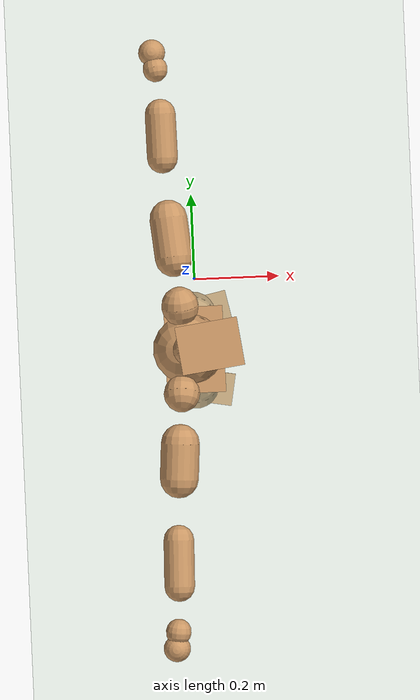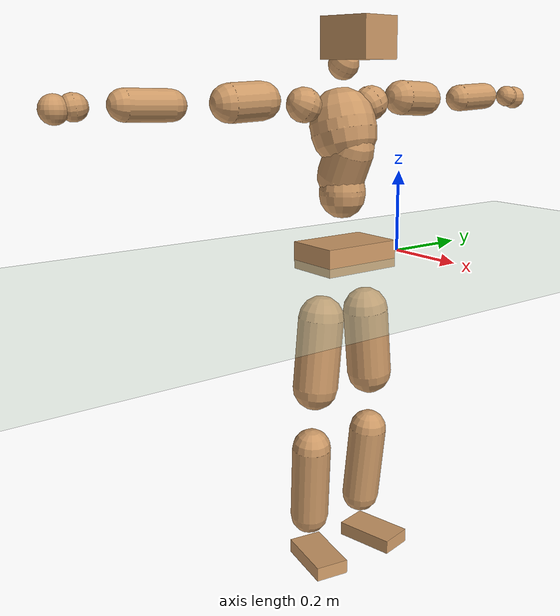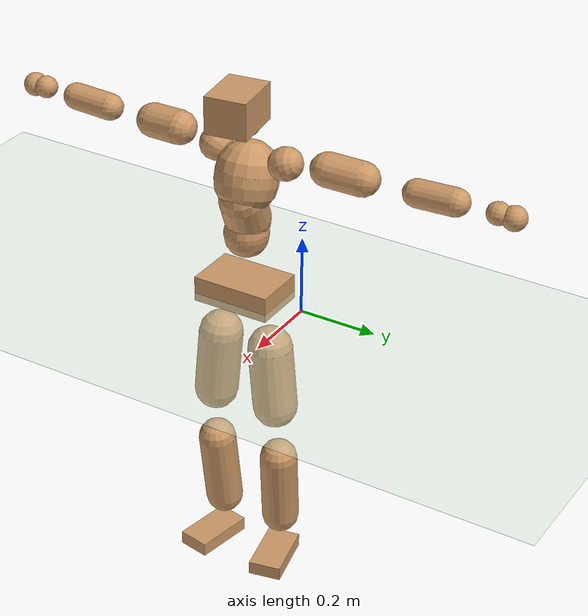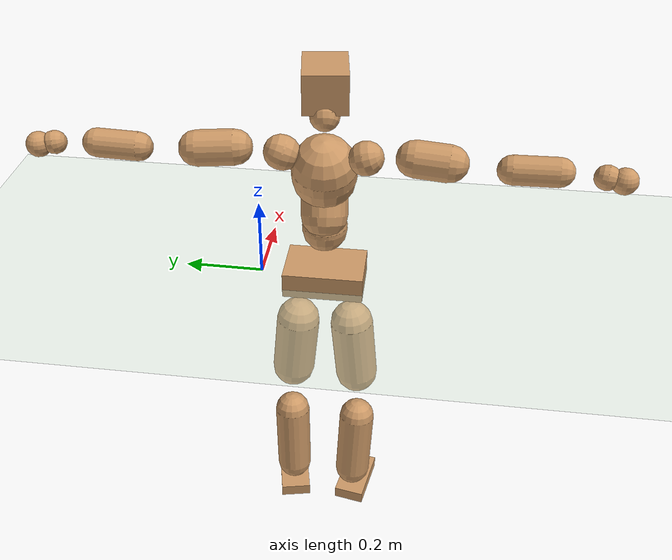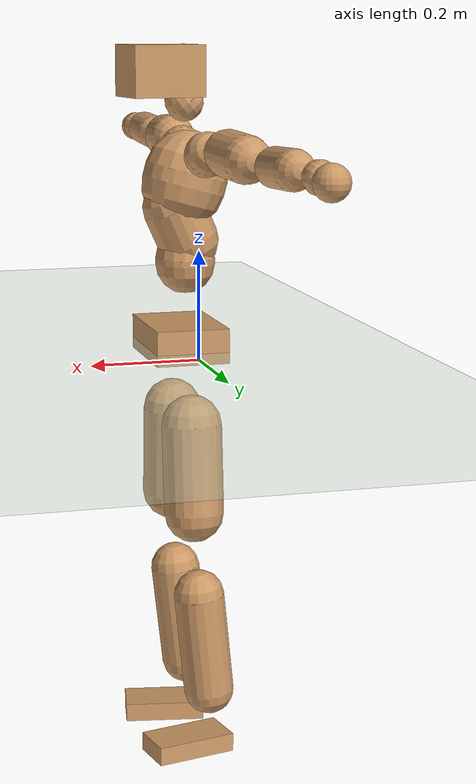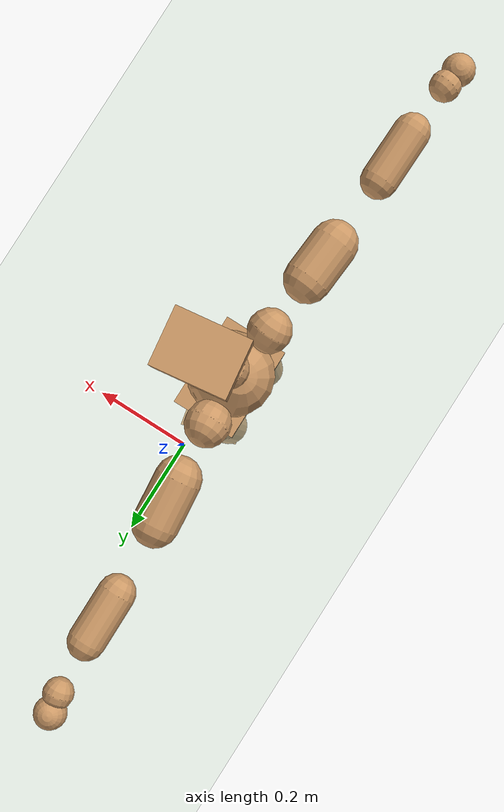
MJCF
<mujoco model="humanoid">
  <compiler coordinate="local" angle="radian"/>
  <default>
    <joint damping="0.0" armature="0.01" stiffness="0.0" limited="true"/>
    <geom conaffinity="1" condim="3" contype="7" margin="0.001" rgba="0.8 0.6 .4 1"/>
  </default>
  <asset>
    <texture type="skybox" builtin="gradient" rgb1=".4 .5 .6" rgb2="0 0 0" width="100" height="100"/>
    <texture builtin="flat" height="1278" mark="cross" markrgb="1 1 1" name="texgeom" random="0.01" rgb1="0.8 0.6 0.4" rgb2="0.8 0.6 0.4" type="cube" width="127"/>
    <texture builtin="checker" height="100" name="texplane" rgb1="0 0 0" rgb2="0.8 0.8 0.8" type="2d" width="100"/>
    <material name="MatPlane" reflectance="0.5" shininess="1" specular="1" texrepeat="60 60" texture="texplane"/>
    <material name="geom" texture="texgeom" texuniform="true"/>
  </asset>
  <worldbody>
    <light cutoff="100" diffuse="1 1 1" dir="-0 0 -1.3" directional="true" exponent="1" pos="0 0 1.3" specular=".1 .1 .1"/>
    <geom conaffinity="1" condim="3" name="floor" pos="0 0 0" rgba="0.8 0.9 0.8 1" size="100 100 .2" type="plane" material="MatPlane"/>
    <body name="Pelvis" pos="-0.0012 -0.1664 0.0209">
      <freejoint name="Pelvis"/>
      <geom type="box" contype="1" conaffinity="1" density="5359.374606" pos="-0.0050 -0.0000 -0.0110" size="0.0692 0.1016 0.0329" quat="1.0000 0.0000 0.0000 0.0025" name="Pelvis"/>
      <body name="L_Hip" pos="-0.0089 0.064 -0.0774">
        <joint name="L_Hip_x" type="hinge" pos="0 0 0" axis="1 0 0" stiffness="1600" damping="160" armature="0.02" range="-180.0000 180.0000"/>
        <joint name="L_Hip_y" type="hinge" pos="0 0 0" axis="0 1 0" stiffness="1600" damping="160" armature="0.02" range="-180.0000 180.0000"/>
        <joint name="L_Hip_z" type="hinge" pos="0 0 0" axis="0 0 1" stiffness="1600" damping="160" armature="0.02" range="-180.0000 180.0000"/>
        <geom type="capsule" contype="1" conaffinity="1" density="2040.816327" size="0.0569" fromto="-0.0002 0.0079 -0.0865 -0.0006 0.0233 -0.2554" name="L_Hip"/>
        <body name="L_Knee" pos="-0.0008 0.0312 -0.3419">
          <joint name="L_Knee_x" type="hinge" pos="0 0 0" axis="1 0 0" stiffness="1600" damping="160" armature="0.02" range="-180.0000 180.0000"/>
          <joint name="L_Knee_y" type="hinge" pos="0 0 0" axis="0 1 0" stiffness="1600" damping="160" armature="0.02" range="-180.0000 180.0000"/>
          <joint name="L_Knee_z" type="hinge" pos="0 0 0" axis="0 0 1" stiffness="1600" damping="160" armature="0.02" range="-180.0000 180.0000"/>
          <geom type="capsule" contype="1" conaffinity="1" density="1234.567901" size="0.0485" fromto="-0.0084 -0.0023 -0.0780 -0.0296 -0.0080 -0.2762" name="L_Knee"/>
          <body name="L_Ankle" pos="-0.038 -0.0103 -0.3543">
            <joint name="L_Ankle_x" type="hinge" pos="0 0 0" axis="1 0 0" stiffness="1600" damping="160" armature="0.02" range="-180.0000 180.0000"/>
            <joint name="L_Ankle_y" type="hinge" pos="0 0 0" axis="0 1 0" stiffness="1600" damping="160" armature="0.02" range="-180.0000 180.0000"/>
            <joint name="L_Ankle_z" type="hinge" pos="0 0 0" axis="0 0 1" stiffness="1600" damping="160" armature="0.02" range="-180.0000 180.0000"/>
            <geom type="box" contype="1" conaffinity="1" density="999.999987" pos="0.0535 0.0113 -0.0251" size="0.0782 0.0423 0.018" quat="0.9946 0.0000 0.0000 0.1036" name="L_Ankle"/>
            <body name="L_Toe" pos="0.107 0.0225 -0.0502">
              <joint name="L_Toe_x" type="hinge" pos="0 0 0" axis="1 0 0" stiffness="1000" damping="100" armature="0.02" range="-180.0000 180.0000"/>
              <joint name="L_Toe_y" type="hinge" pos="0 0 0" axis="0 1 0" stiffness="1000" damping="100" armature="0.02" range="-180.0000 180.0000"/>
              <joint name="L_Toe_z" type="hinge" pos="0 0 0" axis="0 0 1" stiffness="1000" damping="100" armature="0.02" range="-180.0000 180.0000"/>
              <geom type="box" contype="1" conaffinity="1" density="8723992.927918" pos="0.0000 0.0000 0.0257" size="0.0008 0.0021 0.0009" quat="0.9939 0.0000 0.0000 0.1104" name="L_Toe"/>
            </body>
          </body>
        </body>
      </body>
      <body name="R_Hip" pos="-0.0062 -0.0632 -0.076">
        <joint name="R_Hip_x" type="hinge" pos="0 0 0" axis="1 0 0" stiffness="1600" damping="160" armature="0.02" range="-180.0000 180.0000"/>
        <joint name="R_Hip_y" type="hinge" pos="0 0 0" axis="0 1 0" stiffness="1600" damping="160" armature="0.02" range="-180.0000 180.0000"/>
        <joint name="R_Hip_z" type="hinge" pos="0 0 0" axis="0 0 1" stiffness="1600" damping="160" armature="0.02" range="-180.0000 180.0000"/>
        <geom type="capsule" contype="1" conaffinity="1" density="2040.816327" size="0.0563" fromto="-0.0008 -0.0085 -0.0859 -0.0023 -0.0259 -0.2612" name="R_Hip"/>
        <body name="R_Knee" pos="-0.0031 -0.0344 -0.3471">
          <joint name="R_Knee_x" type="hinge" pos="0 0 0" axis="1 0 0" stiffness="1600" damping="160" armature="0.02" range="-180.0000 180.0000"/>
          <joint name="R_Knee_y" type="hinge" pos="0 0 0" axis="0 1 0" stiffness="1600" damping="160" armature="0.02" range="-180.0000 180.0000"/>
          <joint name="R_Knee_z" type="hinge" pos="0 0 0" axis="0 0 1" stiffness="1600" damping="160" armature="0.02" range="-180.0000 180.0000"/>
          <geom type="capsule" contype="1" conaffinity="1" density="1234.567901" size="0.0489" fromto="-0.0082 0.0027 -0.0784 -0.0290 0.0096 -0.2765" name="R_Knee"/>
          <body name="R_Ankle" pos="-0.0372 0.0123 -0.355">
            <joint name="R_Ankle_x" type="hinge" pos="0 0 0" axis="1 0 0" stiffness="1600" damping="160" armature="0.02" range="-180.0000 180.0000"/>
            <joint name="R_Ankle_y" type="hinge" pos="0 0 0" axis="0 1 0" stiffness="1600" damping="160" armature="0.02" range="-180.0000 180.0000"/>
            <joint name="R_Ankle_z" type="hinge" pos="0 0 0" axis="0 0 1" stiffness="1600" damping="160" armature="0.02" range="-180.0000 180.0000"/>
            <geom type="box" contype="1" conaffinity="1" density="999.999955" pos="0.0548 -0.0098 -0.0210" size="0.0784 0.0421 0.0181" quat="0.9961 0.0000 0.0000 -0.0883" name="R_Ankle"/>
            <body name="R_Toe" pos="0.1097 -0.0196 -0.0421">
              <joint name="R_Toe_x" type="hinge" pos="0 0 0" axis="1 0 0" stiffness="1000" damping="100" armature="0.02" range="-180.0000 180.0000"/>
              <joint name="R_Toe_y" type="hinge" pos="0 0 0" axis="0 1 0" stiffness="1000" damping="100" armature="0.02" range="-180.0000 180.0000"/>
              <joint name="R_Toe_z" type="hinge" pos="0 0 0" axis="0 0 1" stiffness="1000" damping="100" armature="0.02" range="-180.0000 180.0000"/>
              <geom type="box" contype="1" conaffinity="1" density="8680344.965069" pos="0.0000 0.0000 0.0219" size="0.0008 0.0021 0.0009" quat="0.9970 0.0000 0.0000 -0.0780" name="R_Toe"/>
            </body>
          </body>
        </body>
      </body>
      <body name="Torso" pos="-0.0152 -0.001 0.0875">
        <joint name="Torso_x" type="hinge" pos="0 0 0" axis="1 0 0" stiffness="2000" damping="200" armature="0.02" range="-180.0000 180.0000"/>
        <joint name="Torso_y" type="hinge" pos="0 0 0" axis="0 1 0" stiffness="2000" damping="200" armature="0.02" range="-180.0000 180.0000"/>
        <joint name="Torso_z" type="hinge" pos="0 0 0" axis="0 0 1" stiffness="2000" damping="200" armature="0.02" range="-180.0000 180.0000"/>
        <geom type="capsule" contype="1" conaffinity="1" density="2040.816327" size="0.0561" fromto="-0.0002 0.0010 0.0561 -0.0001 0.0008 0.0447" name="Torso"/>
        <body name="Spine" pos="-0.0003 0.0018 0.1008">
          <joint name="Spine_x" type="hinge" pos="0 0 0" axis="1 0 0" stiffness="2000" damping="200" armature="0.02" range="-180.0000 180.0000"/>
          <joint name="Spine_y" type="hinge" pos="0 0 0" axis="0 1 0" stiffness="2000" damping="200" armature="0.02" range="-180.0000 180.0000"/>
          <joint name="Spine_z" type="hinge" pos="0 0 0" axis="0 0 1" stiffness="2000" damping="200" armature="0.02" range="-180.0000 180.0000"/>
          <geom type="capsule" contype="1" conaffinity="1" density="2040.816327" size="0.0579" fromto="0.0240 0.0026 0.0527 -0.0058 -0.0006 -0.0127" name="Spine"/>
          <body name="Chest" pos="0.0182 0.002 0.04">
            <joint name="Chest_x" type="hinge" pos="0 0 0" axis="1 0 0" stiffness="2000" damping="200" armature="0.02" range="-180.0000 180.0000"/>
            <joint name="Chest_y" type="hinge" pos="0 0 0" axis="0 1 0" stiffness="2000" damping="200" armature="0.02" range="-180.0000 180.0000"/>
            <joint name="Chest_z" type="hinge" pos="0 0 0" axis="0 0 1" stiffness="2000" damping="200" armature="0.02" range="-180.0000 180.0000"/>
            <geom type="capsule" contype="1" conaffinity="1" density="2040.816327" size="0.0787" fromto="-0.0213 -0.0014 0.0758 -0.0142 -0.0010 0.0504" name="Chest"/>
            <body name="Neck" pos="-0.0389 -0.0041 0.1776">
              <joint name="Neck_x" type="hinge" pos="0 0 0" axis="1 0 0" stiffness="1000" damping="100" armature="0.02" range="-180.0000 180.0000"/>
              <joint name="Neck_y" type="hinge" pos="0 0 0" axis="0 1 0" stiffness="1000" damping="100" armature="0.02" range="-180.0000 180.0000"/>
              <joint name="Neck_z" type="hinge" pos="0 0 0" axis="0 0 1" stiffness="1000" damping="100" armature="0.02" range="-180.0000 180.0000"/>
              <geom type="capsule" contype="1" conaffinity="1" density="1000" size="0.0358" fromto="0.0218 0.0021 0.0269 0.0231 0.0022 0.0284" name="Neck"/>
              <body name="Head" pos="0.0449 0.0044 0.0553">
                <joint name="Head_x" type="hinge" pos="0 0 0" axis="1 0 0" stiffness="1000" damping="100" armature="0.02" range="-180.0000 180.0000"/>
                <joint name="Head_y" type="hinge" pos="0 0 0" axis="0 1 0" stiffness="1000" damping="100" armature="0.02" range="-180.0000 180.0000"/>
                <joint name="Head_z" type="hinge" pos="0 0 0" axis="0 0 1" stiffness="1000" damping="100" armature="0.02" range="-180.0000 180.0000"/>
                <geom type="box" contype="1" conaffinity="1" density="2249.999863" pos="0.0234 0.0032 0.0287" size="0.0687 0.0531 0.0471" quat="0.9977 0.0000 0.0000 0.0675" name="Head"/>
              </body>
            </body>
            <body name="L_Thorax" pos="-0.0323 0.0597 0.1006">
              <joint name="L_Thorax_x" type="hinge" pos="0 0 0" axis="1 0 0" stiffness="1000" damping="100" armature="0.02" range="-180.0000 180.0000"/>
              <joint name="L_Thorax_y" type="hinge" pos="0 0 0" axis="0 1 0" stiffness="1000" damping="100" armature="0.02" range="-180.0000 180.0000"/>
              <joint name="L_Thorax_z" type="hinge" pos="0 0 0" axis="0 0 1" stiffness="1000" damping="100" armature="0.02" range="-180.0000 180.0000"/>
              <geom type="capsule" contype="1" conaffinity="1" density="1000" size="0.0415" fromto="-0.0019 0.0385 0.0152 -0.0016 0.0339 0.0134" name="L_Thorax"/>
              <body name="L_Shoulder" pos="-0.0035 0.0725 0.0286">
                <joint name="L_Shoulder_x" type="hinge" pos="0 0 0" axis="1 0 0" stiffness="1000" damping="100" armature="0.02" range="-720.0000 720.0000"/>
                <joint name="L_Shoulder_y" type="hinge" pos="0 0 0" axis="0 1 0" stiffness="1000" damping="100" armature="0.02" range="-720.0000 720.0000"/>
                <joint name="L_Shoulder_z" type="hinge" pos="0 0 0" axis="0 0 1" stiffness="1000" damping="100" armature="0.02" range="-720.0000 720.0000"/>
                <geom type="capsule" contype="1" conaffinity="1" density="1000" size="0.0425" fromto="-0.0070 0.0721 -0.0035 -0.0156 0.1604 -0.0079" name="L_Shoulder"/>
                <body name="L_Elbow" pos="-0.0225 0.2325 -0.0114">
                  <joint name="L_Elbow_x" type="hinge" pos="0 0 0" axis="1 0 0" stiffness="1000" damping="100" armature="0.02" range="-720.0000 720.0000"/>
                  <joint name="L_Elbow_y" type="hinge" pos="0 0 0" axis="0 1 0" stiffness="1000" damping="100" armature="0.02" range="-720.0000 720.0000"/>
                  <joint name="L_Elbow_z" type="hinge" pos="0 0 0" axis="0 0 1" stiffness="1000" damping="100" armature="0.02" range="-720.0000 720.0000"/>
                  <geom type="capsule" contype="1" conaffinity="1" density="1000" size="0.0343" fromto="-0.0005 0.0642 0.0024 -0.0013 0.1624 0.0061" name="L_Elbow"/>
                  <body name="L_Wrist" pos="-0.0019 0.2266 0.0085">
                    <joint name="L_Wrist_x" type="hinge" pos="0 0 0" axis="1 0 0" stiffness="600" damping="60" armature="0.02" range="-180.0000 180.0000"/>
                    <joint name="L_Wrist_y" type="hinge" pos="0 0 0" axis="0 1 0" stiffness="600" damping="60" armature="0.02" range="-180.0000 180.0000"/>
                    <joint name="L_Wrist_z" type="hinge" pos="0 0 0" axis="0 0 1" stiffness="600" damping="60" armature="0.02" range="-180.0000 180.0000"/>
                    <geom type="capsule" contype="1" conaffinity="1" density="1000" size="0.0277" fromto="-0.0062 0.0363 -0.0045 -0.0065 0.0383 -0.0048" name="L_Wrist"/>
                    <body name="L_Hand" pos="-0.0127 0.0746 -0.0093">
                      <joint name="L_Hand_x" type="hinge" pos="0 0 0" axis="1 0 0" stiffness="600" damping="60" armature="0.02" range="-180.0000 180.0000"/>
                      <joint name="L_Hand_y" type="hinge" pos="0 0 0" axis="0 1 0" stiffness="600" damping="60" armature="0.02" range="-180.0000 180.0000"/>
                      <joint name="L_Hand_z" type="hinge" pos="0 0 0" axis="0 0 1" stiffness="600" damping="60" armature="0.02" range="-180.0000 180.0000"/>
                      <geom type="sphere" contype="1" conaffinity="1" density="1000" size="0.0300" pos="0.0000 0.0000 0.0000" name="L_Hand"/>
                    </body>
                  </body>
                </body>
              </body>
            </body>
            <body name="R_Thorax" pos="-0.0352 -0.0628 0.1005">
              <joint name="R_Thorax_x" type="hinge" pos="0 0 0" axis="1 0 0" stiffness="1000" damping="100" armature="0.02" range="-180.0000 180.0000"/>
              <joint name="R_Thorax_y" type="hinge" pos="0 0 0" axis="0 1 0" stiffness="1000" damping="100" armature="0.02" range="-180.0000 180.0000"/>
              <joint name="R_Thorax_z" type="hinge" pos="0 0 0" axis="0 0 1" stiffness="1000" damping="100" armature="0.02" range="-180.0000 180.0000"/>
              <geom type="capsule" contype="1" conaffinity="1" density="1000" size="0.0407" fromto="-0.0028 -0.0366 0.0142 -0.0029 -0.0385 0.0149" name="R_Thorax"/>
              <body name="R_Shoulder" pos="-0.0057 -0.075 0.0291">
                <joint name="R_Shoulder_x" type="hinge" pos="0 0 0" axis="1 0 0" stiffness="1000" damping="100" armature="0.02" range="-720.0000 720.0000"/>
                <joint name="R_Shoulder_y" type="hinge" pos="0 0 0" axis="0 1 0" stiffness="1000" damping="100" armature="0.02" range="-720.0000 720.0000"/>
                <joint name="R_Shoulder_z" type="hinge" pos="0 0 0" axis="0 0 1" stiffness="1000" damping="100" armature="0.02" range="-720.0000 720.0000"/>
                <geom type="capsule" contype="1" conaffinity="1" density="1000" size="0.0434" fromto="-0.0053 -0.0731 -0.0033 -0.0111 -0.1527 -0.0069" name="R_Shoulder"/>
                <body name="R_Elbow" pos="-0.0165 -0.2258 -0.0101">
                  <joint name="R_Elbow_x" type="hinge" pos="0 0 0" axis="1 0 0" stiffness="1000" damping="100" armature="0.02" range="-720.0000 720.0000"/>
                  <joint name="R_Elbow_y" type="hinge" pos="0 0 0" axis="0 1 0" stiffness="1000" damping="100" armature="0.02" range="-720.0000 720.0000"/>
                  <joint name="R_Elbow_z" type="hinge" pos="0 0 0" axis="0 0 1" stiffness="1000" damping="100" armature="0.02" range="-720.0000 720.0000"/>
                  <geom type="capsule" contype="1" conaffinity="1" density="1000" size="0.0341" fromto="-0.0016 -0.0640 0.0017 -0.0041 -0.1677 0.0045" name="R_Elbow"/>
                  <body name="R_Wrist" pos="-0.0057 -0.2317 0.0063">
                    <joint name="R_Wrist_x" type="hinge" pos="0 0 0" axis="1 0 0" stiffness="600" damping="60" armature="0.02" range="-180.0000 180.0000"/>
                    <joint name="R_Wrist_y" type="hinge" pos="0 0 0" axis="0 1 0" stiffness="600" damping="60" armature="0.02" range="-180.0000 180.0000"/>
                    <joint name="R_Wrist_z" type="hinge" pos="0 0 0" axis="0 0 1" stiffness="600" damping="60" armature="0.02" range="-180.0000 180.0000"/>
                    <geom type="capsule" contype="1" conaffinity="1" density="1000" size="0.0286" fromto="-0.0048 -0.0366 -0.0034 -0.0051 -0.0386 -0.0036" name="R_Wrist"/>
                    <body name="R_Hand" pos="-0.0098 -0.0752 -0.007">
                      <joint name="R_Hand_x" type="hinge" pos="0 0 0" axis="1 0 0" stiffness="600" damping="60" armature="0.02" range="-180.0000 180.0000"/>
                      <joint name="R_Hand_y" type="hinge" pos="0 0 0" axis="0 1 0" stiffness="600" damping="60" armature="0.02" range="-180.0000 180.0000"/>
                      <joint name="R_Hand_z" type="hinge" pos="0 0 0" axis="0 0 1" stiffness="600" damping="60" armature="0.02" range="-180.0000 180.0000"/>
                      <geom type="sphere" contype="1" conaffinity="1" density="1000" size="0.0302" pos="0.0000 0.0000 0.0000" name="R_Hand"/>
                    </body>
                  </body>
                </body>
              </body>
            </body>
          </body>
        </body>
      </body>
    </body>
  </worldbody>
  <actuator>
    <motor name="L_Hip_x" joint="L_Hip_x" gear="500"/>
    <motor name="L_Hip_y" joint="L_Hip_y" gear="500"/>
    <motor name="L_Hip_z" joint="L_Hip_z" gear="500"/>
    <motor name="L_Knee_x" joint="L_Knee_x" gear="500"/>
    <motor name="L_Knee_y" joint="L_Knee_y" gear="500"/>
    <motor name="L_Knee_z" joint="L_Knee_z" gear="500"/>
    <motor name="L_Ankle_x" joint="L_Ankle_x" gear="500"/>
    <motor name="L_Ankle_y" joint="L_Ankle_y" gear="500"/>
    <motor name="L_Ankle_z" joint="L_Ankle_z" gear="500"/>
    <motor name="L_Toe_x" joint="L_Toe_x" gear="500"/>
    <motor name="L_Toe_y" joint="L_Toe_y" gear="500"/>
    <motor name="L_Toe_z" joint="L_Toe_z" gear="500"/>
    <motor name="R_Hip_x" joint="R_Hip_x" gear="500"/>
    <motor name="R_Hip_y" joint="R_Hip_y" gear="500"/>
    <motor name="R_Hip_z" joint="R_Hip_z" gear="500"/>
    <motor name="R_Knee_x" joint="R_Knee_x" gear="500"/>
    <motor name="R_Knee_y" joint="R_Knee_y" gear="500"/>
    <motor name="R_Knee_z" joint="R_Knee_z" gear="500"/>
    <motor name="R_Ankle_x" joint="R_Ankle_x" gear="500"/>
    <motor name="R_Ankle_y" joint="R_Ankle_y" gear="500"/>
    <motor name="R_Ankle_z" joint="R_Ankle_z" gear="500"/>
    <motor name="R_Toe_x" joint="R_Toe_x" gear="500"/>
    <motor name="R_Toe_y" joint="R_Toe_y" gear="500"/>
    <motor name="R_Toe_z" joint="R_Toe_z" gear="500"/>
    <motor name="Torso_x" joint="Torso_x" gear="500"/>
    <motor name="Torso_y" joint="Torso_y" gear="500"/>
    <motor name="Torso_z" joint="Torso_z" gear="500"/>
    <motor name="Spine_x" joint="Spine_x" gear="500"/>
    <motor name="Spine_y" joint="Spine_y" gear="500"/>
    <motor name="Spine_z" joint="Spine_z" gear="500"/>
    <motor name="Chest_x" joint="Chest_x" gear="500"/>
    <motor name="Chest_y" joint="Chest_y" gear="500"/>
    <motor name="Chest_z" joint="Chest_z" gear="500"/>
    <motor name="Neck_x" joint="Neck_x" gear="500"/>
    <motor name="Neck_y" joint="Neck_y" gear="500"/>
    <motor name="Neck_z" joint="Neck_z" gear="500"/>
    <motor name="Head_x" joint="Head_x" gear="500"/>
    <motor name="Head_y" joint="Head_y" gear="500"/>
    <motor name="Head_z" joint="Head_z" gear="500"/>
    <motor name="L_Thorax_x" joint="L_Thorax_x" gear="500"/>
    <motor name="L_Thorax_y" joint="L_Thorax_y" gear="500"/>
    <motor name="L_Thorax_z" joint="L_Thorax_z" gear="500"/>
    <motor name="L_Shoulder_x" joint="L_Shoulder_x" gear="500"/>
    <motor name="L_Shoulder_y" joint="L_Shoulder_y" gear="500"/>
    <motor name="L_Shoulder_z" joint="L_Shoulder_z" gear="500"/>
    <motor name="L_Elbow_x" joint="L_Elbow_x" gear="500"/>
    <motor name="L_Elbow_y" joint="L_Elbow_y" gear="500"/>
    <motor name="L_Elbow_z" joint="L_Elbow_z" gear="500"/>
    <motor name="L_Wrist_x" joint="L_Wrist_x" gear="500"/>
    <motor name="L_Wrist_y" joint="L_Wrist_y" gear="500"/>
    <motor name="L_Wrist_z" joint="L_Wrist_z" gear="500"/>
    <motor name="L_Hand_x" joint="L_Hand_x" gear="500"/>
    <motor name="L_Hand_y" joint="L_Hand_y" gear="500"/>
    <motor name="L_Hand_z" joint="L_Hand_z" gear="500"/>
    <motor name="R_Thorax_x" joint="R_Thorax_x" gear="500"/>
    <motor name="R_Thorax_y" joint="R_Thorax_y" gear="500"/>
    <motor name="R_Thorax_z" joint="R_Thorax_z" gear="500"/>
    <motor name="R_Shoulder_x" joint="R_Shoulder_x" gear="500"/>
    <motor name="R_Shoulder_y" joint="R_Shoulder_y" gear="500"/>
    <motor name="R_Shoulder_z" joint="R_Shoulder_z" gear="500"/>
    <motor name="R_Elbow_x" joint="R_Elbow_x" gear="500"/>
    <motor name="R_Elbow_y" joint="R_Elbow_y" gear="500"/>
    <motor name="R_Elbow_z" joint="R_Elbow_z" gear="500"/>
    <motor name="R_Wrist_x" joint="R_Wrist_x" gear="500"/>
    <motor name="R_Wrist_y" joint="R_Wrist_y" gear="500"/>
    <motor name="R_Wrist_z" joint="R_Wrist_z" gear="500"/>
    <motor name="R_Hand_x" joint="R_Hand_x" gear="500"/>
    <motor name="R_Hand_y" joint="R_Hand_y" gear="500"/>
    <motor name="R_Hand_z" joint="R_Hand_z" gear="500"/>
  </actuator>
  <contact>
    <exclude body1="Torso" body2="Chest"/>
    <exclude body1="Head" body2="Chest"/>
    <exclude body1="R_Knee" body2="R_Toe"/>
    <exclude body1="R_Knee" body2="L_Ankle"/>
    <exclude body1="R_Knee" body2="L_Toe"/>
    <exclude body1="L_Knee" body2="L_Toe"/>
    <exclude body1="L_Knee" body2="R_Ankle"/>
    <exclude body1="L_Knee" body2="R_Toe"/>
    <exclude body1="L_Shoulder" body2="Chest"/>
    <exclude body1="R_Shoulder" body2="Chest"/>
  </contact>
  <sensor/>
  <size njmax="700" nconmax="700"/>
</mujoco>
